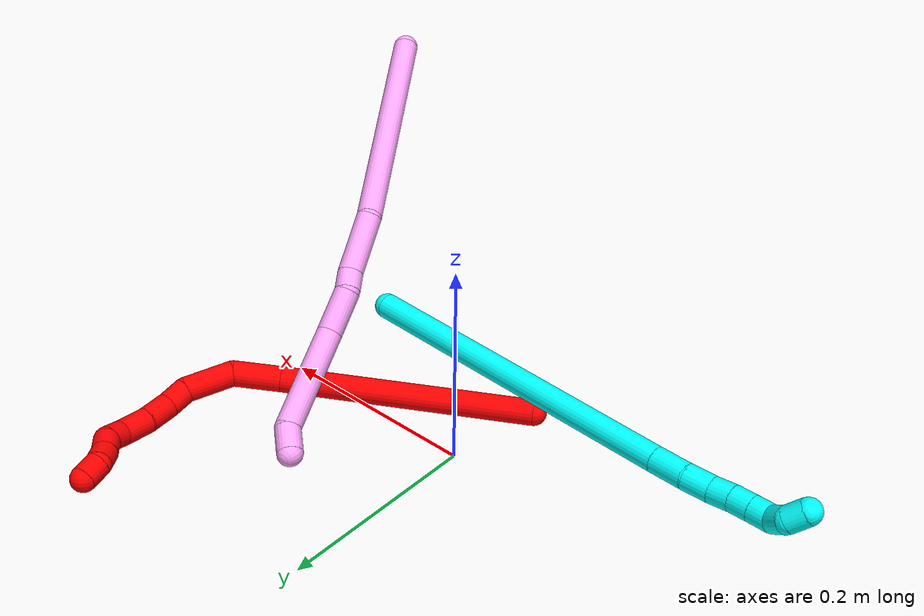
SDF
<sdf version="1.7">
 <world name="default">
  <model name="photoneo_s_sensor">
   <static>1</static>
   <pose>0 0 2 1.57079 1.57079 3.14159</pose>
   <link name="link">
    <inertial><mass>0.1</mass></inertial>
    <sensor name="sensor" type="depth">
     <update_rate>30</update_rate>
     <camera>
      <horizontal_fov>1.22</horizontal_fov>
      <image><width>1920</width><height>1200</height><format>B8G8R8</format></image>
      <clip><near>0.1</near><far>4</far></clip>
      <depth_camera><output>points</output></depth_camera>
     </camera>
     <plugin name="camera_plugin" filename="libgazebo_ros_depth_camera.so">
      <baseline>0.2</baseline>
      <alwaysOn>1</alwaysOn>
      <updateRate>0.0</updateRate>
      <cameraName>camera_ir</cameraName>
      <imageTopicName>/camera/color/image_raw</imageTopicName>
      <cameraInfoTopicName>/camera/color/camera_info</cameraInfoTopicName>
      <depthImageTopicName>/camera/depth/image_raw</depthImageTopicName>
      <depthImageCameraInfoTopicName>/camera/depth/camera_info</depthImageCameraInfoTopicName>
      <pointCloudTopicName>/camera/depth/points</pointCloudTopicName>
      <frameName>fr_optical</frameName>
      <pointCloudCutoff>0.1</pointCloudCutoff>
      <pointCloudCutoffMax>2.0</pointCloudCutoffMax>
      <distortionK1>0</distortionK1>
      <distortionK2>0</distortionK2>
      <distortionK3>0</distortionK3>
      <distortionT1>0</distortionT1>
      <distortionT2>0</distortionT2>
      <CxPrime>0</CxPrime>
      <Cx>0</Cx>
      <Cy>0</Cy>
      <focalLength>0</focalLength>
      <hackBaseline>0</hackBaseline>
     </plugin>
    </sensor>
   </link>
  </model>
  <model name="bin">
   <static>1</static>
   <link name="bottom">
    <collision name="collision-bottom">
     <pose>0 0 -0.01 0 -0 0</pose>
     <geometry><box><size>0.8 0.6 0.02</size></box></geometry>
     <surface>
      <friction><ode><mu>100</mu><mu2>100</mu2></ode></friction>
      <contact><collide_bitmask>65535</collide_bitmask></contact>
     </surface>
    </collision>
   </link>
   <link name="west_wall">
    <collision name="collision-west_wall">
     <pose>-0.41 0 0.1 0 -0 0</pose>
     <geometry><box><size>0.02 0.6 0.2</size></box></geometry>
     <surface>
      <friction><ode><mu>100</mu><mu2>100</mu2></ode></friction>
      <contact><collide_bitmask>65535</collide_bitmask></contact>
     </surface>
    </collision>
   </link>
   <link name="east_wall">
    <collision name="collision-east_wall">
     <pose>0.41 0 0.1 0 -0 0</pose>
     <geometry><box><size>0.02 0.6 0.2</size></box></geometry>
     <surface>
      <friction><ode><mu>100</mu><mu2>100</mu2></ode></friction>
      <contact><collide_bitmask>65535</collide_bitmask></contact>
     </surface>
    </collision>
   </link>
   <link name="south_wall">
    <collision name="collision-south_wall">
     <pose>0 -0.31 0.1 0 -0 0</pose>
     <geometry><box><size>0.8 0.02 0.2</size></box></geometry>
     <surface>
      <friction><ode><mu>100</mu><mu2>100</mu2></ode></friction>
      <contact><collide_bitmask>65535</collide_bitmask></contact>
     </surface>
    </collision>
   </link>
   <link name="north_wall">
    <collision name="collision-north_wall">
     <pose>0 0.31 0.1 0 -0 0</pose>
     <geometry><box><size>0.8 0.02 0.2</size></box></geometry>
     <surface>
      <friction><ode><mu>100</mu><mu2>100</mu2></ode></friction>
      <contact><collide_bitmask>65535</collide_bitmask></contact>
     </surface>
    </collision>
   </link>
  </model>
  <model name="2">
   <static>0</static>
   <link name="2">
    <collision name="collision-cylinder-e_1_1_4">
     <pose>-0.010966 0.00109 0.121062 -0.009003 -0.090335 0.000407</pose>
     <geometry><cylinder><radius>0.0125</radius><length>0.243126</length></cylinder></geometry>
     <surface>
      <friction><ode><mu>1.16</mu><mu2>1.16</mu2><slip1>0</slip1><slip2>0</slip2></ode></friction>
      <contact><ode><kp>1e+06</kp><kd>1</kd><max_vel>0</max_vel><min_depth>0.001</min_depth></ode></contact>
     </surface>
    </collision>
    <visual name="visual-cylinder-e_1_1_4">
     <pose>-0.010966 0.00109 0.121062 -0.009003 -0.090335 0.000407</pose>
     <geometry><cylinder><radius>0.0125</radius><length>0.243126</length></cylinder></geometry>
     <material><ambient>1 0 0 1</ambient></material>
    </visual>
    <collision name="collision-cylinder-e_2_4_5">
     <pose>-0.021696 0.005183 0.265403 -0.128313 0.010084 -0.000648</pose>
     <geometry><cylinder><radius>0.0125</radius><length>0.046946</length></cylinder></geometry>
     <surface>
      <friction><ode><mu>1.16</mu><mu2>1.16</mu2><slip1>0</slip1><slip2>0</slip2></ode></friction>
      <contact><ode><kp>1e+06</kp><kd>1</kd><max_vel>0</max_vel><min_depth>0.001</min_depth></ode></contact>
     </surface>
    </collision>
    <visual name="visual-cylinder-e_2_4_5">
     <pose>-0.021696 0.005183 0.265403 -0.128313 0.010084 -0.000648</pose>
     <geometry><cylinder><radius>0.0125</radius><length>0.046946</length></cylinder></geometry>
     <material><ambient>1 0 0 1</ambient></material>
    </visual>
    <collision name="collision-cylinder-e_3_5_6">
     <pose>-0.009769 0.008834 0.309447 -0.031159 0.512564 -0.008166</pose>
     <geometry><cylinder><radius>0.0125</radius><length>0.047676</length></cylinder></geometry>
     <surface>
      <friction><ode><mu>1.16</mu><mu2>1.16</mu2><slip1>0</slip1><slip2>0</slip2></ode></friction>
      <contact><ode><kp>1e+06</kp><kd>1</kd><max_vel>0</max_vel><min_depth>0.001</min_depth></ode></contact>
     </surface>
    </collision>
    <visual name="visual-cylinder-e_3_5_6">
     <pose>-0.009769 0.008834 0.309447 -0.031159 0.512564 -0.008166</pose>
     <geometry><cylinder><radius>0.0125</radius><length>0.047676</length></cylinder></geometry>
     <material><ambient>1 0 0 1</ambient></material>
    </visual>
    <collision name="collision-cylinder-e_4_6_7">
     <pose>0.011055 0.009045 0.33703 0.06385 0.92856 0.031983</pose>
     <geometry><cylinder><radius>0.0125</radius><length>0.022813</length></cylinder></geometry>
     <surface>
      <friction><ode><mu>1.16</mu><mu2>1.16</mu2><slip1>0</slip1><slip2>0</slip2></ode></friction>
      <contact><ode><kp>1e+06</kp><kd>1</kd><max_vel>0</max_vel><min_depth>0.001</min_depth></ode></contact>
     </surface>
    </collision>
    <visual name="visual-cylinder-e_4_6_7">
     <pose>0.011055 0.009045 0.33703 0.06385 0.92856 0.031983</pose>
     <geometry><cylinder><radius>0.0125</radius><length>0.022813</length></cylinder></geometry>
     <material><ambient>1 0 0 1</ambient></material>
    </visual>
    <collision name="collision-cylinder-e_5_7_8">
     <pose>0.032003 0.012226 0.350994 -0.468572 0.975057 -0.251755</pose>
     <geometry><cylinder><radius>0.0125</radius><length>0.028546</length></cylinder></geometry>
     <surface>
      <friction><ode><mu>1.16</mu><mu2>1.16</mu2><slip1>0</slip1><slip2>0</slip2></ode></friction>
      <contact><ode><kp>1e+06</kp><kd>1</kd><max_vel>0</max_vel><min_depth>0.001</min_depth></ode></contact>
     </surface>
    </collision>
    <visual name="visual-cylinder-e_5_7_8">
     <pose>0.032003 0.012226 0.350994 -0.468572 0.975057 -0.251755</pose>
     <geometry><cylinder><radius>0.0125</radius><length>0.028546</length></cylinder></geometry>
     <material><ambient>1 0 0 1</ambient></material>
    </visual>
    <collision name="collision-cylinder-e_6_8_9">
     <pose>0.054793 0.020033 0.367251 -0.431036 0.83039 -0.192412</pose>
     <geometry><cylinder><radius>0.0125</radius><length>0.029735</length></cylinder></geometry>
     <surface>
      <friction><ode><mu>1.16</mu><mu2>1.16</mu2><slip1>0</slip1><slip2>0</slip2></ode></friction>
      <contact><ode><kp>1e+06</kp><kd>1</kd><max_vel>0</max_vel><min_depth>0.001</min_depth></ode></contact>
     </surface>
    </collision>
    <visual name="visual-cylinder-e_6_8_9">
     <pose>0.054793 0.020033 0.367251 -0.431036 0.83039 -0.192412</pose>
     <geometry><cylinder><radius>0.0125</radius><length>0.029735</length></cylinder></geometry>
     <material><ambient>1 0 0 1</ambient></material>
    </visual>
    <collision name="collision-cylinder-e_7_9_10">
     <pose>0.073628 0.030298 0.379943 -1.03818 0.839703 -0.49945</pose>
     <geometry><cylinder><radius>0.0125</radius><length>0.021119</length></cylinder></geometry>
     <surface>
      <friction><ode><mu>1.16</mu><mu2>1.16</mu2><slip1>0</slip1><slip2>0</slip2></ode></friction>
      <contact><ode><kp>1e+06</kp><kd>1</kd><max_vel>0</max_vel><min_depth>0.001</min_depth></ode></contact>
     </surface>
    </collision>
    <visual name="visual-cylinder-e_7_9_10">
     <pose>0.073628 0.030298 0.379943 -1.03818 0.839703 -0.49945</pose>
     <geometry><cylinder><radius>0.0125</radius><length>0.021119</length></cylinder></geometry>
     <material><ambient>1 0 0 1</ambient></material>
    </visual>
    <collision name="collision-cylinder-e_8_10_11">
     <pose>0.090783 0.039705 0.381913 -2.02088 1.19169 -1.64829</pose>
     <geometry><cylinder><radius>0.0125</radius><length>0.020008</length></cylinder></geometry>
     <surface>
      <friction><ode><mu>1.16</mu><mu2>1.16</mu2><slip1>0</slip1><slip2>0</slip2></ode></friction>
      <contact><ode><kp>1e+06</kp><kd>1</kd><max_vel>0</max_vel><min_depth>0.001</min_depth></ode></contact>
     </surface>
    </collision>
    <visual name="visual-cylinder-e_8_10_11">
     <pose>0.090783 0.039705 0.381913 -2.02088 1.19169 -1.64829</pose>
     <geometry><cylinder><radius>0.0125</radius><length>0.020008</length></cylinder></geometry>
     <material><ambient>1 0 0 1</ambient></material>
    </visual>
    <collision name="collision-cylinder-e_9_11_12">
     <pose>0.109041 0.047479 0.380257 -1.58095 1.11087 -1.11999</pose>
     <geometry><cylinder><radius>0.0125</radius><length>0.020008</length></cylinder></geometry>
     <surface>
      <friction><ode><mu>1.16</mu><mu2>1.16</mu2><slip1>0</slip1><slip2>0</slip2></ode></friction>
      <contact><ode><kp>1e+06</kp><kd>1</kd><max_vel>0</max_vel><min_depth>0.001</min_depth></ode></contact>
     </surface>
    </collision>
    <visual name="visual-cylinder-e_9_11_12">
     <pose>0.109041 0.047479 0.380257 -1.58095 1.11087 -1.11999</pose>
     <geometry><cylinder><radius>0.0125</radius><length>0.020008</length></cylinder></geometry>
     <material><ambient>1 0 0 1</ambient></material>
    </visual>
    <collision name="collision-cylinder-e_10_12_2">
     <pose>0.126918 0.052989 0.384646 -0.236727 1.09776 -0.145199</pose>
     <geometry><cylinder><radius>0.0125</radius><length>0.020024</length></cylinder></geometry>
     <surface>
      <friction><ode><mu>1.16</mu><mu2>1.16</mu2><slip1>0</slip1><slip2>0</slip2></ode></friction>
      <contact><ode><kp>1e+06</kp><kd>1</kd><max_vel>0</max_vel><min_depth>0.001</min_depth></ode></contact>
     </surface>
    </collision>
    <visual name="visual-cylinder-e_10_12_2">
     <pose>0.126918 0.052989 0.384646 -0.236727 1.09776 -0.145199</pose>
     <geometry><cylinder><radius>0.0125</radius><length>0.020024</length></cylinder></geometry>
     <material><ambient>1 0 0 1</ambient></material>
    </visual>
    <collision name="collision-sphere-2">
     <pose>0.135831 0.054059 0.38908 0 -0 0</pose>
     <geometry><sphere><radius>0.0125</radius></sphere></geometry>
     <surface>
      <friction><ode><mu>1.16</mu><mu2>1.16</mu2><slip1>0</slip1><slip2>0</slip2></ode></friction>
      <contact><ode><kp>1e+06</kp><kd>1</kd><max_vel>0</max_vel><min_depth>0.001</min_depth></ode></contact>
     </surface>
    </collision>
    <visual name="visual-sphere-2">
     <pose>0.135831 0.054059 0.38908 0 -0 0</pose>
     <geometry><sphere><radius>0.0125</radius></sphere></geometry>
     <material><ambient>1 0 0 1</ambient></material>
    </visual>
    <collision name="collision-sphere-12">
     <pose>0.118006 0.05192 0.380212 0 -0 0</pose>
     <geometry><sphere><radius>0.0125</radius></sphere></geometry>
     <surface>
      <friction><ode><mu>1.16</mu><mu2>1.16</mu2><slip1>0</slip1><slip2>0</slip2></ode></friction>
      <contact><ode><kp>1e+06</kp><kd>1</kd><max_vel>0</max_vel><min_depth>0.001</min_depth></ode></contact>
     </surface>
    </collision>
    <visual name="visual-sphere-12">
     <pose>0.118006 0.05192 0.380212 0 -0 0</pose>
     <geometry><sphere><radius>0.0125</radius></sphere></geometry>
     <material><ambient>1 0 0 1</ambient></material>
    </visual>
    <collision name="collision-sphere-11">
     <pose>0.100077 0.043039 0.380302 0 -0 0</pose>
     <geometry><sphere><radius>0.0125</radius></sphere></geometry>
     <surface>
      <friction><ode><mu>1.16</mu><mu2>1.16</mu2><slip1>0</slip1><slip2>0</slip2></ode></friction>
      <contact><ode><kp>1e+06</kp><kd>1</kd><max_vel>0</max_vel><min_depth>0.001</min_depth></ode></contact>
     </surface>
    </collision>
    <visual name="visual-sphere-11">
     <pose>0.100077 0.043039 0.380302 0 -0 0</pose>
     <geometry><sphere><radius>0.0125</radius></sphere></geometry>
     <material><ambient>1 0 0 1</ambient></material>
    </visual>
    <collision name="collision-sphere-10">
     <pose>0.081489 0.036371 0.383524 0 -0 0</pose>
     <geometry><sphere><radius>0.0125</radius></sphere></geometry>
     <surface>
      <friction><ode><mu>1.16</mu><mu2>1.16</mu2><slip1>0</slip1><slip2>0</slip2></ode></friction>
      <contact><ode><kp>1e+06</kp><kd>1</kd><max_vel>0</max_vel><min_depth>0.001</min_depth></ode></contact>
     </surface>
    </collision>
    <visual name="visual-sphere-10">
     <pose>0.081489 0.036371 0.383524 0 -0 0</pose>
     <geometry><sphere><radius>0.0125</radius></sphere></geometry>
     <material><ambient>1 0 0 1</ambient></material>
    </visual>
    <collision name="collision-sphere-9">
     <pose>0.065768 0.024224 0.376363 0 -0 0</pose>
     <geometry><sphere><radius>0.0125</radius></sphere></geometry>
     <surface>
      <friction><ode><mu>1.16</mu><mu2>1.16</mu2><slip1>0</slip1><slip2>0</slip2></ode></friction>
      <contact><ode><kp>1e+06</kp><kd>1</kd><max_vel>0</max_vel><min_depth>0.001</min_depth></ode></contact>
     </surface>
    </collision>
    <visual name="visual-sphere-9">
     <pose>0.065768 0.024224 0.376363 0 -0 0</pose>
     <geometry><sphere><radius>0.0125</radius></sphere></geometry>
     <material><ambient>1 0 0 1</ambient></material>
    </visual>
    <collision name="collision-sphere-4">
     <pose>-0.021933 0.00218 0.242125 0 -0 0</pose>
     <geometry><sphere><radius>0.0125</radius></sphere></geometry>
     <surface>
      <friction><ode><mu>1.16</mu><mu2>1.16</mu2><slip1>0</slip1><slip2>0</slip2></ode></friction>
      <contact><ode><kp>1e+06</kp><kd>1</kd><max_vel>0</max_vel><min_depth>0.001</min_depth></ode></contact>
     </surface>
    </collision>
    <visual name="visual-sphere-4">
     <pose>-0.021933 0.00218 0.242125 0 -0 0</pose>
     <geometry><sphere><radius>0.0125</radius></sphere></geometry>
     <material><ambient>1 0 0 1</ambient></material>
    </visual>
    <collision name="collision-sphere-1">
     <geometry><sphere><radius>0.0125</radius></sphere></geometry>
     <surface>
      <friction><ode><mu>1.16</mu><mu2>1.16</mu2><slip1>0</slip1><slip2>0</slip2></ode></friction>
      <contact><ode><kp>1e+06</kp><kd>1</kd><max_vel>0</max_vel><min_depth>0.001</min_depth></ode></contact>
     </surface>
    </collision>
    <visual name="visual-sphere-1">
     <geometry><sphere><radius>0.0125</radius></sphere></geometry>
     <material><ambient>1 0 0 1</ambient></material>
    </visual>
    <collision name="collision-sphere-8">
     <pose>0.043818 0.015843 0.358139 0 -0 0</pose>
     <geometry><sphere><radius>0.0125</radius></sphere></geometry>
     <surface>
      <friction><ode><mu>1.16</mu><mu2>1.16</mu2><slip1>0</slip1><slip2>0</slip2></ode></friction>
      <contact><ode><kp>1e+06</kp><kd>1</kd><max_vel>0</max_vel><min_depth>0.001</min_depth></ode></contact>
     </surface>
    </collision>
    <visual name="visual-sphere-8">
     <pose>0.043818 0.015843 0.358139 0 -0 0</pose>
     <geometry><sphere><radius>0.0125</radius></sphere></geometry>
     <material><ambient>1 0 0 1</ambient></material>
    </visual>
    <collision name="collision-sphere-5">
     <pose>-0.021459 0.008187 0.288682 0 -0 0</pose>
     <geometry><sphere><radius>0.0125</radius></sphere></geometry>
     <surface>
      <friction><ode><mu>1.16</mu><mu2>1.16</mu2><slip1>0</slip1><slip2>0</slip2></ode></friction>
      <contact><ode><kp>1e+06</kp><kd>1</kd><max_vel>0</max_vel><min_depth>0.001</min_depth></ode></contact>
     </surface>
    </collision>
    <visual name="visual-sphere-5">
     <pose>-0.021459 0.008187 0.288682 0 -0 0</pose>
     <geometry><sphere><radius>0.0125</radius></sphere></geometry>
     <material><ambient>1 0 0 1</ambient></material>
    </visual>
    <collision name="collision-sphere-6">
     <pose>0.001922 0.009481 0.330211 0 -0 0</pose>
     <geometry><sphere><radius>0.0125</radius></sphere></geometry>
     <surface>
      <friction><ode><mu>1.16</mu><mu2>1.16</mu2><slip1>0</slip1><slip2>0</slip2></ode></friction>
      <contact><ode><kp>1e+06</kp><kd>1</kd><max_vel>0</max_vel><min_depth>0.001</min_depth></ode></contact>
     </surface>
    </collision>
    <visual name="visual-sphere-6">
     <pose>0.001922 0.009481 0.330211 0 -0 0</pose>
     <geometry><sphere><radius>0.0125</radius></sphere></geometry>
     <material><ambient>1 0 0 1</ambient></material>
    </visual>
    <collision name="collision-sphere-7">
     <pose>0.020189 0.008609 0.343848 0 -0 0</pose>
     <geometry><sphere><radius>0.0125</radius></sphere></geometry>
     <surface>
      <friction><ode><mu>1.16</mu><mu2>1.16</mu2><slip1>0</slip1><slip2>0</slip2></ode></friction>
      <contact><ode><kp>1e+06</kp><kd>1</kd><max_vel>0</max_vel><min_depth>0.001</min_depth></ode></contact>
     </surface>
    </collision>
    <visual name="visual-sphere-7">
     <pose>0.020189 0.008609 0.343848 0 -0 0</pose>
     <geometry><sphere><radius>0.0125</radius></sphere></geometry>
     <material><ambient>1 0 0 1</ambient></material>
    </visual>
    <inertial>
     <pose>0.013478 0.011052 0.2325 0 -0 0</pose>
     <mass>0.5</mass>
     <inertia>
      <ixx>0.001237</ixx>
      <ixy>0</ixy>
      <ixz>0</ixz>
      <iyy>0.001243</iyy>
      <iyz>0</iyz>
      <izz>0.000106</izz>
     </inertia>
    </inertial>
   </link>
   <pose>-0.023972 -0.085342 0.012408 1.58174 0.277006 2.20572</pose>
  </model>
  <model name="3">
   <static>0</static>
   <link name="3">
    <collision name="collision-cylinder-e_1_1_4">
     <pose>-0.14159 0.011045 -0.092506 -3.02276 -0.988834 2.92179</pose>
     <geometry><cylinder><radius>0.0125</radius><length>0.338982</length></cylinder></geometry>
     <surface>
      <friction><ode><mu>1.16</mu><mu2>1.16</mu2><slip1>0</slip1><slip2>0</slip2></ode></friction>
      <contact><ode><kp>1e+06</kp><kd>1</kd><max_vel>0</max_vel><min_depth>0.001</min_depth></ode></contact>
     </surface>
    </collision>
    <visual name="visual-cylinder-e_1_1_4">
     <pose>-0.14159 0.011045 -0.092506 -3.02276 -0.988834 2.92179</pose>
     <geometry><cylinder><radius>0.0125</radius><length>0.338982</length></cylinder></geometry>
     <material><ambient>0.003922 1 0.996078 1</ambient></material>
    </visual>
    <collision name="collision-cylinder-e_2_4_5">
     <pose>-0.296875 0.023399 -0.194341 -3.00205 -0.968269 2.87736</pose>
     <geometry><cylinder><radius>0.0125</radius><length>0.033243</length></cylinder></geometry>
     <surface>
      <friction><ode><mu>1.16</mu><mu2>1.16</mu2><slip1>0</slip1><slip2>0</slip2></ode></friction>
      <contact><ode><kp>1e+06</kp><kd>1</kd><max_vel>0</max_vel><min_depth>0.001</min_depth></ode></contact>
     </surface>
    </collision>
    <visual name="visual-cylinder-e_2_4_5">
     <pose>-0.296875 0.023399 -0.194341 -3.00205 -0.968269 2.87736</pose>
     <geometry><cylinder><radius>0.0125</radius><length>0.033243</length></cylinder></geometry>
     <material><ambient>0.003922 1 0.996078 1</ambient></material>
    </visual>
    <collision name="collision-cylinder-e_3_5_6">
     <pose>-0.32225 0.026174 -0.209461 -2.89397 -1.09803 2.74021</pose>
     <geometry><cylinder><radius>0.0125</radius><length>0.026239</length></cylinder></geometry>
     <surface>
      <friction><ode><mu>1.16</mu><mu2>1.16</mu2><slip1>0</slip1><slip2>0</slip2></ode></friction>
      <contact><ode><kp>1e+06</kp><kd>1</kd><max_vel>0</max_vel><min_depth>0.001</min_depth></ode></contact>
     </surface>
    </collision>
    <visual name="visual-cylinder-e_3_5_6">
     <pose>-0.32225 0.026174 -0.209461 -2.89397 -1.09803 2.74021</pose>
     <geometry><cylinder><radius>0.0125</radius><length>0.026239</length></cylinder></geometry>
     <material><ambient>0.003922 1 0.996078 1</ambient></material>
    </visual>
    <collision name="collision-cylinder-e_4_6_7">
     <pose>-0.342412 0.029528 -0.221072 -2.82751 -0.945819 2.54131</pose>
     <geometry><cylinder><radius>0.0125</radius><length>0.020916</length></cylinder></geometry>
     <surface>
      <friction><ode><mu>1.16</mu><mu2>1.16</mu2><slip1>0</slip1><slip2>0</slip2></ode></friction>
      <contact><ode><kp>1e+06</kp><kd>1</kd><max_vel>0</max_vel><min_depth>0.001</min_depth></ode></contact>
     </surface>
    </collision>
    <visual name="visual-cylinder-e_4_6_7">
     <pose>-0.342412 0.029528 -0.221072 -2.82751 -0.945819 2.54131</pose>
     <geometry><cylinder><radius>0.0125</radius><length>0.020916</length></cylinder></geometry>
     <material><ambient>0.003922 1 0.996078 1</ambient></material>
    </visual>
    <collision name="collision-cylinder-e_5_7_8">
     <pose>-0.359059 0.032416 -0.232596 -2.96857 -0.953961 2.80904</pose>
     <geometry><cylinder><radius>0.0125</radius><length>0.020021</length></cylinder></geometry>
     <surface>
      <friction><ode><mu>1.16</mu><mu2>1.16</mu2><slip1>0</slip1><slip2>0</slip2></ode></friction>
      <contact><ode><kp>1e+06</kp><kd>1</kd><max_vel>0</max_vel><min_depth>0.001</min_depth></ode></contact>
     </surface>
    </collision>
    <visual name="visual-cylinder-e_5_7_8">
     <pose>-0.359059 0.032416 -0.232596 -2.96857 -0.953961 2.80904</pose>
     <geometry><cylinder><radius>0.0125</radius><length>0.020021</length></cylinder></geometry>
     <material><ambient>0.003922 1 0.996078 1</ambient></material>
    </visual>
    <collision name="collision-cylinder-e_6_8_9">
     <pose>-0.375362 0.034303 -0.244308 -2.99443 -0.929653 2.84969</pose>
     <geometry><cylinder><radius>0.0125</radius><length>0.020309</length></cylinder></geometry>
     <surface>
      <friction><ode><mu>1.16</mu><mu2>1.16</mu2><slip1>0</slip1><slip2>0</slip2></ode></friction>
      <contact><ode><kp>1e+06</kp><kd>1</kd><max_vel>0</max_vel><min_depth>0.001</min_depth></ode></contact>
     </surface>
    </collision>
    <visual name="visual-cylinder-e_6_8_9">
     <pose>-0.375362 0.034303 -0.244308 -2.99443 -0.929653 2.84969</pose>
     <geometry><cylinder><radius>0.0125</radius><length>0.020309</length></cylinder></geometry>
     <material><ambient>0.003922 1 0.996078 1</ambient></material>
    </visual>
    <collision name="collision-cylinder-e_7_9_10">
     <pose>-0.386672 0.038365 -0.259279 -2.80159 -0.321974 1.51532</pose>
     <geometry><cylinder><radius>0.0125</radius><length>0.020046</length></cylinder></geometry>
     <surface>
      <friction><ode><mu>1.16</mu><mu2>1.16</mu2><slip1>0</slip1><slip2>0</slip2></ode></friction>
      <contact><ode><kp>1e+06</kp><kd>1</kd><max_vel>0</max_vel><min_depth>0.001</min_depth></ode></contact>
     </surface>
    </collision>
    <visual name="visual-cylinder-e_7_9_10">
     <pose>-0.386672 0.038365 -0.259279 -2.80159 -0.321974 1.51532</pose>
     <geometry><cylinder><radius>0.0125</radius><length>0.020046</length></cylinder></geometry>
     <material><ambient>0.003922 1 0.996078 1</ambient></material>
    </visual>
    <collision name="collision-cylinder-e_8_10_2">
     <pose>-0.394581 0.049377 -0.272545 -2.07256 -0.487094 0.794794</pose>
     <geometry><cylinder><radius>0.0125</radius><length>0.020243</length></cylinder></geometry>
     <surface>
      <friction><ode><mu>1.16</mu><mu2>1.16</mu2><slip1>0</slip1><slip2>0</slip2></ode></friction>
      <contact><ode><kp>1e+06</kp><kd>1</kd><max_vel>0</max_vel><min_depth>0.001</min_depth></ode></contact>
     </surface>
    </collision>
    <visual name="visual-cylinder-e_8_10_2">
     <pose>-0.394581 0.049377 -0.272545 -2.07256 -0.487094 0.794794</pose>
     <geometry><cylinder><radius>0.0125</radius><length>0.020243</length></cylinder></geometry>
     <material><ambient>0.003922 1 0.996078 1</ambient></material>
    </visual>
    <collision name="collision-sphere-2">
     <pose>-0.399319 0.057219 -0.276847 0 -0 0</pose>
     <geometry><sphere><radius>0.0125</radius></sphere></geometry>
     <surface>
      <friction><ode><mu>1.16</mu><mu2>1.16</mu2><slip1>0</slip1><slip2>0</slip2></ode></friction>
      <contact><ode><kp>1e+06</kp><kd>1</kd><max_vel>0</max_vel><min_depth>0.001</min_depth></ode></contact>
     </surface>
    </collision>
    <visual name="visual-sphere-2">
     <pose>-0.399319 0.057219 -0.276847 0 -0 0</pose>
     <geometry><sphere><radius>0.0125</radius></sphere></geometry>
     <material><ambient>0.003922 1 0.996078 1</ambient></material>
    </visual>
    <collision name="collision-sphere-10">
     <pose>-0.389844 0.041535 -0.268243 0 -0 0</pose>
     <geometry><sphere><radius>0.0125</radius></sphere></geometry>
     <surface>
      <friction><ode><mu>1.16</mu><mu2>1.16</mu2><slip1>0</slip1><slip2>0</slip2></ode></friction>
      <contact><ode><kp>1e+06</kp><kd>1</kd><max_vel>0</max_vel><min_depth>0.001</min_depth></ode></contact>
     </surface>
    </collision>
    <visual name="visual-sphere-10">
     <pose>-0.389844 0.041535 -0.268243 0 -0 0</pose>
     <geometry><sphere><radius>0.0125</radius></sphere></geometry>
     <material><ambient>0.003922 1 0.996078 1</ambient></material>
    </visual>
    <collision name="collision-sphere-9">
     <pose>-0.3835 0.035194 -0.250316 0 -0 0</pose>
     <geometry><sphere><radius>0.0125</radius></sphere></geometry>
     <surface>
      <friction><ode><mu>1.16</mu><mu2>1.16</mu2><slip1>0</slip1><slip2>0</slip2></ode></friction>
      <contact><ode><kp>1e+06</kp><kd>1</kd><max_vel>0</max_vel><min_depth>0.001</min_depth></ode></contact>
     </surface>
    </collision>
    <visual name="visual-sphere-9">
     <pose>-0.3835 0.035194 -0.250316 0 -0 0</pose>
     <geometry><sphere><radius>0.0125</radius></sphere></geometry>
     <material><ambient>0.003922 1 0.996078 1</ambient></material>
    </visual>
    <collision name="collision-sphere-4">
     <pose>-0.28318 0.022089 -0.185012 0 -0 0</pose>
     <geometry><sphere><radius>0.0125</radius></sphere></geometry>
     <surface>
      <friction><ode><mu>1.16</mu><mu2>1.16</mu2><slip1>0</slip1><slip2>0</slip2></ode></friction>
      <contact><ode><kp>1e+06</kp><kd>1</kd><max_vel>0</max_vel><min_depth>0.001</min_depth></ode></contact>
     </surface>
    </collision>
    <visual name="visual-sphere-4">
     <pose>-0.28318 0.022089 -0.185012 0 -0 0</pose>
     <geometry><sphere><radius>0.0125</radius></sphere></geometry>
     <material><ambient>0.003922 1 0.996078 1</ambient></material>
    </visual>
    <collision name="collision-sphere-1">
     <geometry><sphere><radius>0.0125</radius></sphere></geometry>
     <surface>
      <friction><ode><mu>1.16</mu><mu2>1.16</mu2><slip1>0</slip1><slip2>0</slip2></ode></friction>
      <contact><ode><kp>1e+06</kp><kd>1</kd><max_vel>0</max_vel><min_depth>0.001</min_depth></ode></contact>
     </surface>
    </collision>
    <visual name="visual-sphere-1">
     <geometry><sphere><radius>0.0125</radius></sphere></geometry>
     <material><ambient>0.003922 1 0.996078 1</ambient></material>
    </visual>
    <collision name="collision-sphere-8">
     <pose>-0.367224 0.033412 -0.2383 0 -0 0</pose>
     <geometry><sphere><radius>0.0125</radius></sphere></geometry>
     <surface>
      <friction><ode><mu>1.16</mu><mu2>1.16</mu2><slip1>0</slip1><slip2>0</slip2></ode></friction>
      <contact><ode><kp>1e+06</kp><kd>1</kd><max_vel>0</max_vel><min_depth>0.001</min_depth></ode></contact>
     </surface>
    </collision>
    <visual name="visual-sphere-8">
     <pose>-0.367224 0.033412 -0.2383 0 -0 0</pose>
     <geometry><sphere><radius>0.0125</radius></sphere></geometry>
     <material><ambient>0.003922 1 0.996078 1</ambient></material>
    </visual>
    <collision name="collision-sphere-5">
     <pose>-0.31057 0.024709 -0.203669 0 -0 0</pose>
     <geometry><sphere><radius>0.0125</radius></sphere></geometry>
     <surface>
      <friction><ode><mu>1.16</mu><mu2>1.16</mu2><slip1>0</slip1><slip2>0</slip2></ode></friction>
      <contact><ode><kp>1e+06</kp><kd>1</kd><max_vel>0</max_vel><min_depth>0.001</min_depth></ode></contact>
     </surface>
    </collision>
    <visual name="visual-sphere-5">
     <pose>-0.31057 0.024709 -0.203669 0 -0 0</pose>
     <geometry><sphere><radius>0.0125</radius></sphere></geometry>
     <material><ambient>0.003922 1 0.996078 1</ambient></material>
    </visual>
    <collision name="collision-sphere-6">
     <pose>-0.333931 0.027638 -0.215253 0 -0 0</pose>
     <geometry><sphere><radius>0.0125</radius></sphere></geometry>
     <surface>
      <friction><ode><mu>1.16</mu><mu2>1.16</mu2><slip1>0</slip1><slip2>0</slip2></ode></friction>
      <contact><ode><kp>1e+06</kp><kd>1</kd><max_vel>0</max_vel><min_depth>0.001</min_depth></ode></contact>
     </surface>
    </collision>
    <visual name="visual-sphere-6">
     <pose>-0.333931 0.027638 -0.215253 0 -0 0</pose>
     <geometry><sphere><radius>0.0125</radius></sphere></geometry>
     <material><ambient>0.003922 1 0.996078 1</ambient></material>
    </visual>
    <collision name="collision-sphere-7">
     <pose>-0.350893 0.031419 -0.226892 0 -0 0</pose>
     <geometry><sphere><radius>0.0125</radius></sphere></geometry>
     <surface>
      <friction><ode><mu>1.16</mu><mu2>1.16</mu2><slip1>0</slip1><slip2>0</slip2></ode></friction>
      <contact><ode><kp>1e+06</kp><kd>1</kd><max_vel>0</max_vel><min_depth>0.001</min_depth></ode></contact>
     </surface>
    </collision>
    <visual name="visual-sphere-7">
     <pose>-0.350893 0.031419 -0.226892 0 -0 0</pose>
     <geometry><sphere><radius>0.0125</radius></sphere></geometry>
     <material><ambient>0.003922 1 0.996078 1</ambient></material>
    </visual>
    <inertial>
     <pose>-0.208068 0.017881 -0.136544 0 -0 0</pose>
     <mass>0.5</mass>
     <inertia>
      <ixx>-0.001389</ixx>
      <ixy>0</ixy>
      <ixz>0</ixz>
      <iyy>0.003639</iyy>
      <iyz>0</iyz>
      <izz>0.002497</izz>
     </inertia>
    </inertial>
   </link>
   <pose>0.17391 -0.096893 0.03638 2.23627 -0.432264 0.351988</pose>
  </model>
  <model name="4">
   <static>0</static>
   <link name="4">
    <collision name="collision-cylinder-e_1_1_4">
     <pose>-0.02294 0.056121 -0.10239 -2.6402 -0.193999 0.726248</pose>
     <geometry><cylinder><radius>0.0125</radius><length>0.237988</length></cylinder></geometry>
     <surface>
      <friction><ode><mu>1.16</mu><mu2>1.16</mu2><slip1>0</slip1><slip2>0</slip2></ode></friction>
      <contact><ode><kp>1e+06</kp><kd>1</kd><max_vel>0</max_vel><min_depth>0.001</min_depth></ode></contact>
     </surface>
    </collision>
    <visual name="visual-cylinder-e_1_1_4">
     <pose>-0.02294 0.056121 -0.10239 -2.6402 -0.193999 0.726248</pose>
     <geometry><cylinder><radius>0.0125</radius><length>0.237988</length></cylinder></geometry>
     <material><ambient>1 0.65098 0.996078 1</ambient></material>
    </visual>
    <collision name="collision-cylinder-e_2_4_5">
     <pose>-0.060202 0.121539 -0.230314 -2.79241 -0.485056 1.90284</pose>
     <geometry><cylinder><radius>0.0125</radius><length>0.061432</length></cylinder></geometry>
     <surface>
      <friction><ode><mu>1.16</mu><mu2>1.16</mu2><slip1>0</slip1><slip2>0</slip2></ode></friction>
      <contact><ode><kp>1e+06</kp><kd>1</kd><max_vel>0</max_vel><min_depth>0.001</min_depth></ode></contact>
     </surface>
    </collision>
    <visual name="visual-cylinder-e_2_4_5">
     <pose>-0.060202 0.121539 -0.230314 -2.79241 -0.485056 1.90284</pose>
     <geometry><cylinder><radius>0.0125</radius><length>0.061432</length></cylinder></geometry>
     <material><ambient>1 0.65098 0.996078 1</ambient></material>
    </visual>
    <collision name="collision-cylinder-e_3_5_6">
     <pose>-0.077718 0.135767 -0.26427 -2.61192 -0.316266 1.06307</pose>
     <geometry><cylinder><radius>0.0125</radius><length>0.02054</length></cylinder></geometry>
     <surface>
      <friction><ode><mu>1.16</mu><mu2>1.16</mu2><slip1>0</slip1><slip2>0</slip2></ode></friction>
      <contact><ode><kp>1e+06</kp><kd>1</kd><max_vel>0</max_vel><min_depth>0.001</min_depth></ode></contact>
     </surface>
    </collision>
    <visual name="visual-cylinder-e_3_5_6">
     <pose>-0.077718 0.135767 -0.26427 -2.61192 -0.316266 1.06307</pose>
     <geometry><cylinder><radius>0.0125</radius><length>0.02054</length></cylinder></geometry>
     <material><ambient>1 0.65098 0.996078 1</ambient></material>
    </visual>
    <collision name="collision-cylinder-e_4_6_7">
     <pose>-0.093166 0.144905 -0.290899 -2.91455 -0.580435 2.41223</pose>
     <geometry><cylinder><radius>0.0125</radius><length>0.04469</length></cylinder></geometry>
     <surface>
      <friction><ode><mu>1.16</mu><mu2>1.16</mu2><slip1>0</slip1><slip2>0</slip2></ode></friction>
      <contact><ode><kp>1e+06</kp><kd>1</kd><max_vel>0</max_vel><min_depth>0.001</min_depth></ode></contact>
     </surface>
    </collision>
    <visual name="visual-cylinder-e_4_6_7">
     <pose>-0.093166 0.144905 -0.290899 -2.91455 -0.580435 2.41223</pose>
     <geometry><cylinder><radius>0.0125</radius><length>0.04469</length></cylinder></geometry>
     <material><ambient>1 0.65098 0.996078 1</ambient></material>
    </visual>
    <collision name="collision-cylinder-e_5_7_8">
     <pose>-0.118975 0.165402 -0.359024 -2.82615 -0.252626 1.3476</pose>
     <geometry><cylinder><radius>0.0125</radius><length>0.108462</length></cylinder></geometry>
     <surface>
      <friction><ode><mu>1.16</mu><mu2>1.16</mu2><slip1>0</slip1><slip2>0</slip2></ode></friction>
      <contact><ode><kp>1e+06</kp><kd>1</kd><max_vel>0</max_vel><min_depth>0.001</min_depth></ode></contact>
     </surface>
    </collision>
    <visual name="visual-cylinder-e_5_7_8">
     <pose>-0.118975 0.165402 -0.359024 -2.82615 -0.252626 1.3476</pose>
     <geometry><cylinder><radius>0.0125</radius><length>0.108462</length></cylinder></geometry>
     <material><ambient>1 0.65098 0.996078 1</ambient></material>
    </visual>
    <collision name="collision-cylinder-e_6_8_2">
     <pose>-0.135251 0.190946 -0.418307 -2.36212 -0.20385 0.488093</pose>
     <geometry><cylinder><radius>0.0125</radius><length>0.026887</length></cylinder></geometry>
     <surface>
      <friction><ode><mu>1.16</mu><mu2>1.16</mu2><slip1>0</slip1><slip2>0</slip2></ode></friction>
      <contact><ode><kp>1e+06</kp><kd>1</kd><max_vel>0</max_vel><min_depth>0.001</min_depth></ode></contact>
     </surface>
    </collision>
    <visual name="visual-cylinder-e_6_8_2">
     <pose>-0.135251 0.190946 -0.418307 -2.36212 -0.20385 0.488093</pose>
     <geometry><cylinder><radius>0.0125</radius><length>0.026887</length></cylinder></geometry>
     <material><ambient>1 0.65098 0.996078 1</ambient></material>
    </visual>
    <collision name="collision-sphere-2">
     <pose>-0.137973 0.2002 -0.427671 0 -0 0</pose>
     <geometry><sphere><radius>0.0125</radius></sphere></geometry>
     <surface>
      <friction><ode><mu>1.16</mu><mu2>1.16</mu2><slip1>0</slip1><slip2>0</slip2></ode></friction>
      <contact><ode><kp>1e+06</kp><kd>1</kd><max_vel>0</max_vel><min_depth>0.001</min_depth></ode></contact>
     </surface>
    </collision>
    <visual name="visual-sphere-2">
     <pose>-0.137973 0.2002 -0.427671 0 -0 0</pose>
     <geometry><sphere><radius>0.0125</radius></sphere></geometry>
     <material><ambient>1 0.65098 0.996078 1</ambient></material>
    </visual>
    <collision name="collision-sphere-4">
     <pose>-0.04588 0.112242 -0.20478 0 -0 0</pose>
     <geometry><sphere><radius>0.0125</radius></sphere></geometry>
     <surface>
      <friction><ode><mu>1.16</mu><mu2>1.16</mu2><slip1>0</slip1><slip2>0</slip2></ode></friction>
      <contact><ode><kp>1e+06</kp><kd>1</kd><max_vel>0</max_vel><min_depth>0.001</min_depth></ode></contact>
     </surface>
    </collision>
    <visual name="visual-sphere-4">
     <pose>-0.04588 0.112242 -0.20478 0 -0 0</pose>
     <geometry><sphere><radius>0.0125</radius></sphere></geometry>
     <material><ambient>1 0.65098 0.996078 1</ambient></material>
    </visual>
    <collision name="collision-sphere-1">
     <geometry><sphere><radius>0.0125</radius></sphere></geometry>
     <surface>
      <friction><ode><mu>1.16</mu><mu2>1.16</mu2><slip1>0</slip1><slip2>0</slip2></ode></friction>
      <contact><ode><kp>1e+06</kp><kd>1</kd><max_vel>0</max_vel><min_depth>0.001</min_depth></ode></contact>
     </surface>
    </collision>
    <visual name="visual-sphere-1">
     <geometry><sphere><radius>0.0125</radius></sphere></geometry>
     <material><ambient>1 0.65098 0.996078 1</ambient></material>
    </visual>
    <collision name="collision-sphere-8">
     <pose>-0.13253 0.181692 -0.408943 0 -0 0</pose>
     <geometry><sphere><radius>0.0125</radius></sphere></geometry>
     <surface>
      <friction><ode><mu>1.16</mu><mu2>1.16</mu2><slip1>0</slip1><slip2>0</slip2></ode></friction>
      <contact><ode><kp>1e+06</kp><kd>1</kd><max_vel>0</max_vel><min_depth>0.001</min_depth></ode></contact>
     </surface>
    </collision>
    <visual name="visual-sphere-8">
     <pose>-0.13253 0.181692 -0.408943 0 -0 0</pose>
     <geometry><sphere><radius>0.0125</radius></sphere></geometry>
     <material><ambient>1 0.65098 0.996078 1</ambient></material>
    </visual>
    <collision name="collision-sphere-5">
     <pose>-0.074524 0.130836 -0.255847 0 -0 0</pose>
     <geometry><sphere><radius>0.0125</radius></sphere></geometry>
     <surface>
      <friction><ode><mu>1.16</mu><mu2>1.16</mu2><slip1>0</slip1><slip2>0</slip2></ode></friction>
      <contact><ode><kp>1e+06</kp><kd>1</kd><max_vel>0</max_vel><min_depth>0.001</min_depth></ode></contact>
     </surface>
    </collision>
    <visual name="visual-sphere-5">
     <pose>-0.074524 0.130836 -0.255847 0 -0 0</pose>
     <geometry><sphere><radius>0.0125</radius></sphere></geometry>
     <material><ambient>1 0.65098 0.996078 1</ambient></material>
    </visual>
    <collision name="collision-sphere-6">
     <pose>-0.080912 0.140699 -0.272693 0 -0 0</pose>
     <geometry><sphere><radius>0.0125</radius></sphere></geometry>
     <surface>
      <friction><ode><mu>1.16</mu><mu2>1.16</mu2><slip1>0</slip1><slip2>0</slip2></ode></friction>
      <contact><ode><kp>1e+06</kp><kd>1</kd><max_vel>0</max_vel><min_depth>0.001</min_depth></ode></contact>
     </surface>
    </collision>
    <visual name="visual-sphere-6">
     <pose>-0.080912 0.140699 -0.272693 0 -0 0</pose>
     <geometry><sphere><radius>0.0125</radius></sphere></geometry>
     <material><ambient>1 0.65098 0.996078 1</ambient></material>
    </visual>
    <collision name="collision-sphere-7">
     <pose>-0.10542 0.149111 -0.309105 0 -0 0</pose>
     <geometry><sphere><radius>0.0125</radius></sphere></geometry>
     <surface>
      <friction><ode><mu>1.16</mu><mu2>1.16</mu2><slip1>0</slip1><slip2>0</slip2></ode></friction>
      <contact><ode><kp>1e+06</kp><kd>1</kd><max_vel>0</max_vel><min_depth>0.001</min_depth></ode></contact>
     </surface>
    </collision>
    <visual name="visual-sphere-7">
     <pose>-0.10542 0.149111 -0.309105 0 -0 0</pose>
     <geometry><sphere><radius>0.0125</radius></sphere></geometry>
     <material><ambient>1 0.65098 0.996078 1</ambient></material>
    </visual>
    <inertial>
     <pose>-0.062917 0.106322 -0.214265 0 -0 0</pose>
     <mass>0.5</mass>
     <inertia>
      <ixx>0.001703</ixx>
      <ixy>0</ixy>
      <ixz>0</ixz>
      <iyy>0.000211</iyy>
      <iyz>0</iyz>
      <izz>-0.000349</izz>
     </inertia>
    </inertial>
   </link>
   <pose>0.324098 -0.288914 0.203046 -1.19798 -1.4082 2.87823</pose>
  </model>
 </world>
</sdf>
